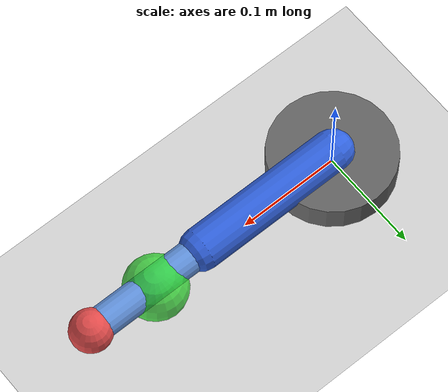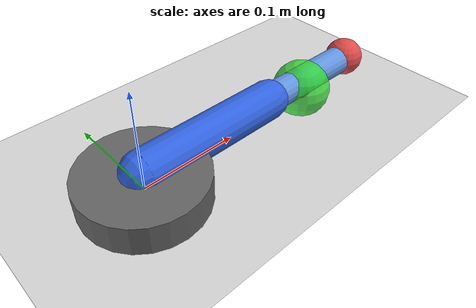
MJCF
<mujoco model="reacher_2d">
  <compiler angle="radian" coordinate="local"/>

  <option gravity="0 0 -9.81" timestep="0.002" integrator="RK4"/>

  <default>
    <joint damping="0.1" limited="true"/>
    <geom contype="1" conaffinity="1" friction="1 0.005 0.001"/>
  </default>

  <visual>
    <headlight ambient="0.4 0.4 0.4"/>
  </visual>

  <worldbody>
    <light pos="0 -1 2" dir="0 0.3 -1"/>

    <!-- Table surface -->
    <geom type="plane" size="1 1 0.01" rgba="0.85 0.85 0.85 1" pos="0 0 -0.01"/>

    <!-- Base (fixed) -->
    <geom type="cylinder" size="0.06 0.02" rgba="0.4 0.4 0.4 1" pos="0 0 0"/>

    <!-- Target (visual marker - this is a "site", a massless reference point) -->
    <body name="target" pos="0.2 0 0.01">
      <geom name="target_geom" type="sphere" size="0.03" rgba="0.2 0.9 0.2 0.8"
            contype="0" conaffinity="0"/>  <!-- No collision -->
      <!-- Site marks the exact target position -->
      <site name="target_site" size="0.01" rgba="1 0 0 1"/>
    </body>

    <!-- Robot arm -->
    <body name="upper_arm" pos="0 0 0.02">
      <joint name="shoulder" type="hinge" axis="0 0 1" range="-3.14 3.14" damping="0.5"/>
      <geom name="upper_arm_geom" type="capsule" size="0.02" fromto="0 0 0 0.15 0 0"
            rgba="0.2 0.4 0.9 1" mass="0.5"/>

      <!-- Forearm (child of upper arm) -->
      <body name="forearm" pos="0.15 0 0">
        <joint name="elbow" type="hinge" axis="0 0 1" range="-2.8 2.8" damping="0.3"/>
        <geom name="forearm_geom" type="capsule" size="0.015" fromto="0 0 0 0.12 0 0"
              rgba="0.4 0.6 0.9 1" mass="0.3"/>

        <!-- Fingertip site (for measuring distance to target) -->
        <site name="fingertip" pos="0.12 0 0" size="0.015" rgba="0.9 0.2 0.2 1"/>
        <geom name="fingertip_geom" type="sphere" size="0.02" pos="0.12 0 0"
              rgba="0.9 0.3 0.3 1" mass="0.05"/>
      </body>
    </body>
  </worldbody>

  <actuator>
    <motor name="shoulder_motor" joint="shoulder" gear="5" ctrllimited="true" ctrlrange="-1 1"/>
    <motor name="elbow_motor" joint="elbow" gear="3" ctrllimited="true" ctrlrange="-1 1"/>
  </actuator>

  <sensor>
    <jointpos name="shoulder_pos" joint="shoulder"/>
    <jointvel name="shoulder_vel" joint="shoulder"/>
    <jointpos name="elbow_pos" joint="elbow"/>
    <jointvel name="elbow_vel" joint="elbow"/>
    <!-- Site-based sensors -->
    <framepos name="fingertip_pos" objtype="site" objname="fingertip"/>
    <framepos name="target_pos" objtype="site" objname="target_site"/>
  </sensor>
</mujoco>
